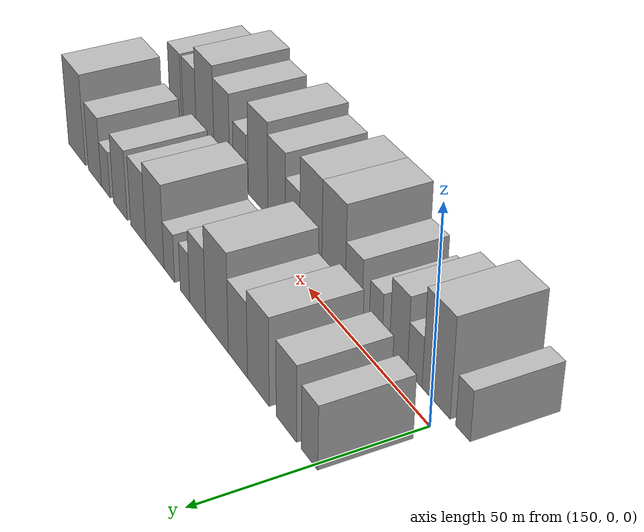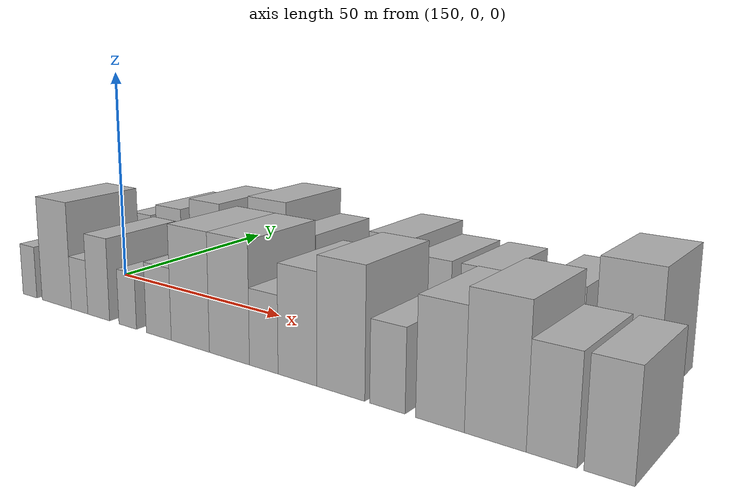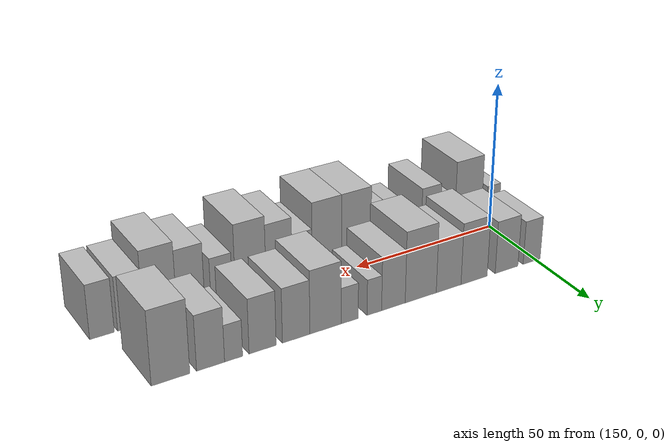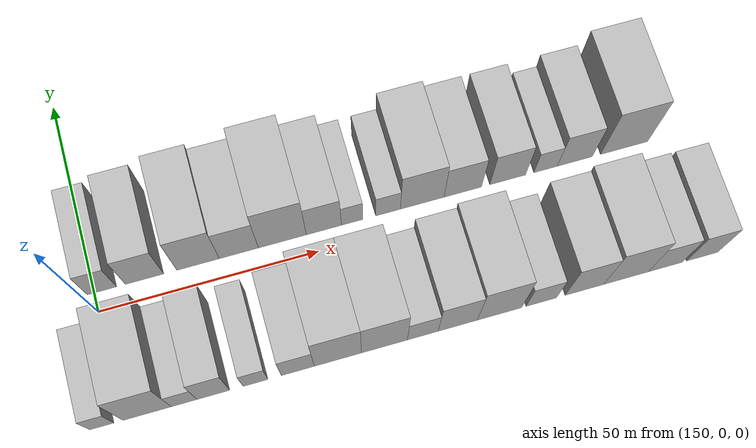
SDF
<sdf version="1.6">
 <world name="default">
  <model name="building_14">
   <static>1</static>
   <pose>151.7256 14.5000 0 0.000000 0.000000 1.570796</pose>
   <link name="link">
    <pose>0 0 7.50 0 0 0</pose>
    <collision name="collision"><geometry><box><size>20.0000 6.5979 15.0000</size></box></geometry></collision>
    <visual name="visual">
     <cast_shadows>0</cast_shadows>
     <geometry><box><size>20.0000 6.5979 15.0000</size></box></geometry>
     <material>
      <script>
       <uri>model://HANNAS_wall/materials/scripts</uri>
       <uri>model://HANNAS_wall/materials/textures</uri>
       <name>vrc/HANNAS_wall</name>
      </script>
     </material>
    </visual>
   </link>
  </model>
  <model name="building_15">
   <static>1</static>
   <pose>161.3414 14.5000 0 0.000000 0.000000 1.570796</pose>
   <link name="link">
    <pose>0 0 9.00 0 0 0</pose>
    <collision name="collision"><geometry><box><size>20.0000 8.6339 18.0000</size></box></geometry></collision>
    <visual name="visual">
     <cast_shadows>0</cast_shadows>
     <geometry><box><size>20.0000 8.6339 18.0000</size></box></geometry>
     <material>
      <script>
       <uri>model://HANNAS_wall/materials/scripts</uri>
       <uri>model://HANNAS_wall/materials/textures</uri>
       <name>vrc/HANNAS_wall</name>
      </script>
     </material>
    </visual>
   </link>
  </model>
  <model name="building_16">
   <static>1</static>
   <pose>173.5010 14.5000 0 0.000000 0.000000 1.570796</pose>
   <link name="link">
    <pose>0 0 10.50 0 0 0</pose>
    <collision name="collision"><geometry><box><size>20.0000 9.6852 21.0000</size></box></geometry></collision>
    <visual name="visual">
     <cast_shadows>0</cast_shadows>
     <geometry><box><size>20.0000 9.6852 21.0000</size></box></geometry>
     <material>
      <script>
       <uri>model://HANNAS_wall/materials/scripts</uri>
       <uri>model://HANNAS_wall/materials/textures</uri>
       <name>vrc/HANNAS_wall</name>
      </script>
     </material>
    </visual>
   </link>
  </model>
  <model name="building_17">
   <static>1</static>
   <pose>182.8265 14.5000 0 0.000000 0.000000 1.570796</pose>
   <link name="link">
    <pose>0 0 9.00 0 0 0</pose>
    <collision name="collision"><geometry><box><size>20.0000 8.9659 18.0000</size></box></geometry></collision>
    <visual name="visual">
     <cast_shadows>0</cast_shadows>
     <geometry><box><size>20.0000 8.9659 18.0000</size></box></geometry>
     <material>
      <script>
       <uri>model://HANNAS_wall/materials/scripts</uri>
       <uri>model://HANNAS_wall/materials/textures</uri>
       <name>vrc/HANNAS_wall</name>
      </script>
     </material>
    </visual>
   </link>
  </model>
  <model name="building_18">
   <static>1</static>
   <pose>192.8159 14.5000 0 0.000000 0.000000 1.570796</pose>
   <link name="link">
    <pose>0 0 12.00 0 0 0</pose>
    <collision name="collision"><geometry><box><size>20.0000 11.0129 24.0000</size></box></geometry></collision>
    <visual name="visual">
     <cast_shadows>0</cast_shadows>
     <geometry><box><size>20.0000 11.0129 24.0000</size></box></geometry>
     <material>
      <script>
       <uri>model://HANNAS_wall/materials/scripts</uri>
       <uri>model://HANNAS_wall/materials/textures</uri>
       <name>vrc/HANNAS_wall</name>
      </script>
     </material>
    </visual>
   </link>
  </model>
  <model name="building_19">
   <static>1</static>
   <pose>202.4088 14.5000 0 0.000000 0.000000 1.570796</pose>
   <link name="link">
    <pose>0 0 9.00 0 0 0</pose>
    <collision name="collision"><geometry><box><size>20.0000 8.1729 18.0000</size></box></geometry></collision>
    <visual name="visual">
     <cast_shadows>0</cast_shadows>
     <geometry><box><size>20.0000 8.1729 18.0000</size></box></geometry>
     <material>
      <script>
       <uri>model://HANNAS_wall/materials/scripts</uri>
       <uri>model://HANNAS_wall/materials/textures</uri>
       <name>vrc/HANNAS_wall</name>
      </script>
     </material>
    </visual>
   </link>
  </model>
  <model name="building_20">
   <static>1</static>
   <pose>208.9782 14.5000 0 0.000000 0.000000 1.570796</pose>
   <link name="link">
    <pose>0 0 6.00 0 0 0</pose>
    <collision name="collision"><geometry><box><size>20.0000 4.9659 12.0000</size></box></geometry></collision>
    <visual name="visual">
     <cast_shadows>0</cast_shadows>
     <geometry><box><size>20.0000 4.9659 12.0000</size></box></geometry>
     <material>
      <script>
       <uri>model://HANNAS_wall/materials/scripts</uri>
       <uri>model://HANNAS_wall/materials/textures</uri>
       <name>vrc/HANNAS_wall</name>
      </script>
     </material>
    </visual>
   </link>
  </model>
  <model name="building_21">
   <static>1</static>
   <pose>217.3360 14.5000 0 0.000000 0.000000 1.570796</pose>
   <link name="link">
    <pose>0 0 6.00 0 0 0</pose>
    <collision name="collision"><geometry><box><size>20.0000 5.7497 12.0000</size></box></geometry></collision>
    <visual name="visual">
     <cast_shadows>0</cast_shadows>
     <geometry><box><size>20.0000 5.7497 12.0000</size></box></geometry>
     <material>
      <script>
       <uri>model://HANNAS_wall/materials/scripts</uri>
       <uri>model://HANNAS_wall/materials/textures</uri>
       <name>vrc/HANNAS_wall</name>
      </script>
     </material>
    </visual>
   </link>
  </model>
  <model name="building_22">
   <static>1</static>
   <pose>225.3404 14.5000 0 0.000000 0.000000 1.570796</pose>
   <link name="link">
    <pose>0 0 10.50 0 0 0</pose>
    <collision name="collision"><geometry><box><size>20.0000 10.2591 21.0000</size></box></geometry></collision>
    <visual name="visual">
     <cast_shadows>0</cast_shadows>
     <geometry><box><size>20.0000 10.2591 21.0000</size></box></geometry>
     <material>
      <script>
       <uri>model://HANNAS_wall/materials/scripts</uri>
       <uri>model://HANNAS_wall/materials/textures</uri>
       <name>vrc/HANNAS_wall</name>
      </script>
     </material>
    </visual>
   </link>
  </model>
  <model name="building_23">
   <static>1</static>
   <pose>234.8918 14.5000 0 0.000000 0.000000 1.570796</pose>
   <link name="link">
    <pose>0 0 9.00 0 0 0</pose>
    <collision name="collision"><geometry><box><size>20.0000 8.8437 18.0000</size></box></geometry></collision>
    <visual name="visual">
     <cast_shadows>0</cast_shadows>
     <geometry><box><size>20.0000 8.8437 18.0000</size></box></geometry>
     <material>
      <script>
       <uri>model://HANNAS_wall/materials/scripts</uri>
       <uri>model://HANNAS_wall/materials/textures</uri>
       <name>vrc/HANNAS_wall</name>
      </script>
     </material>
    </visual>
   </link>
  </model>
  <model name="building_24">
   <static>1</static>
   <pose>245.5570 14.5000 0 0.000000 0.000000 1.570796</pose>
   <link name="link">
    <pose>0 0 9.00 0 0 0</pose>
    <collision name="collision"><geometry><box><size>20.0000 8.4868 18.0000</size></box></geometry></collision>
    <visual name="visual">
     <cast_shadows>0</cast_shadows>
     <geometry><box><size>20.0000 8.4868 18.0000</size></box></geometry>
     <material>
      <script>
       <uri>model://HANNAS_wall/materials/scripts</uri>
       <uri>model://HANNAS_wall/materials/textures</uri>
       <name>vrc/HANNAS_wall</name>
      </script>
     </material>
    </visual>
   </link>
  </model>
  <model name="building_25">
   <static>1</static>
   <pose>254.5691 14.5000 0 0.000000 0.000000 1.570796</pose>
   <link name="link">
    <pose>0 0 6.00 0 0 0</pose>
    <collision name="collision"><geometry><box><size>20.0000 5.5375 12.0000</size></box></geometry></collision>
    <visual name="visual">
     <cast_shadows>0</cast_shadows>
     <geometry><box><size>20.0000 5.5375 12.0000</size></box></geometry>
     <material>
      <script>
       <uri>model://HANNAS_wall/materials/scripts</uri>
       <uri>model://HANNAS_wall/materials/textures</uri>
       <name>vrc/HANNAS_wall</name>
      </script>
     </material>
    </visual>
   </link>
  </model>
  <model name="building_26">
   <static>1</static>
   <pose>261.5695 14.5000 0 0.000000 0.000000 1.570796</pose>
   <link name="link">
    <pose>0 0 9.00 0 0 0</pose>
    <collision name="collision"><geometry><box><size>20.0000 8.4633 18.0000</size></box></geometry></collision>
    <visual name="visual">
     <cast_shadows>0</cast_shadows>
     <geometry><box><size>20.0000 8.4633 18.0000</size></box></geometry>
     <material>
      <script>
       <uri>model://HANNAS_wall/materials/scripts</uri>
       <uri>model://HANNAS_wall/materials/textures</uri>
       <name>vrc/HANNAS_wall</name>
      </script>
     </material>
    </visual>
   </link>
  </model>
  <model name="building_27">
   <static>1</static>
   <pose>273.4827 14.5000 0 0.000000 0.000000 1.570796</pose>
   <link name="link">
    <pose>0 0 12.00 0 0 0</pose>
    <collision name="collision"><geometry><box><size>20.0000 11.3630 24.0000</size></box></geometry></collision>
    <visual name="visual">
     <cast_shadows>0</cast_shadows>
     <geometry><box><size>20.0000 11.3630 24.0000</size></box></geometry>
     <material>
      <script>
       <uri>model://HANNAS_wall/materials/scripts</uri>
       <uri>model://HANNAS_wall/materials/textures</uri>
       <name>vrc/HANNAS_wall</name>
      </script>
     </material>
    </visual>
   </link>
  </model>
  <model name="building_42">
   <static>1</static>
   <pose>145.4929 -14.5000 0 0.000000 0.000000 1.570796</pose>
   <link name="link">
    <pose>0 0 6.00 0 0 0</pose>
    <collision name="collision"><geometry><box><size>20.0000 5.2199 12.0000</size></box></geometry></collision>
    <visual name="visual">
     <cast_shadows>0</cast_shadows>
     <geometry><box><size>20.0000 5.2199 12.0000</size></box></geometry>
     <material>
      <script>
       <uri>model://HANNAS_wall/materials/scripts</uri>
       <uri>model://HANNAS_wall/materials/textures</uri>
       <name>vrc/HANNAS_wall</name>
      </script>
     </material>
    </visual>
   </link>
  </model>
  <model name="building_43">
   <static>1</static>
   <pose>155.3726 -14.5000 0 0.000000 0.000000 1.570796</pose>
   <link name="link">
    <pose>0 0 12.00 0 0 0</pose>
    <collision name="collision"><geometry><box><size>20.0000 10.5393 24.0000</size></box></geometry></collision>
    <visual name="visual">
     <cast_shadows>0</cast_shadows>
     <geometry><box><size>20.0000 10.5393 24.0000</size></box></geometry>
     <material>
      <script>
       <uri>model://HANNAS_wall/materials/scripts</uri>
       <uri>model://HANNAS_wall/materials/textures</uri>
       <name>vrc/HANNAS_wall</name>
      </script>
     </material>
    </visual>
   </link>
  </model>
  <model name="building_44">
   <static>1</static>
   <pose>163.4774 -14.5000 0 0.000000 0.000000 1.570796</pose>
   <link name="link">
    <pose>0 0 6.00 0 0 0</pose>
    <collision name="collision"><geometry><box><size>20.0000 5.6702 12.0000</size></box></geometry></collision>
    <visual name="visual">
     <cast_shadows>0</cast_shadows>
     <geometry><box><size>20.0000 5.6702 12.0000</size></box></geometry>
     <material>
      <script>
       <uri>model://HANNAS_wall/materials/scripts</uri>
       <uri>model://HANNAS_wall/materials/textures</uri>
       <name>vrc/HANNAS_wall</name>
      </script>
     </material>
    </visual>
   </link>
  </model>
  <model name="building_45">
   <static>1</static>
   <pose>169.9142 -14.5000 0 0.000000 0.000000 1.570796</pose>
   <link name="link">
    <pose>0 0 9.00 0 0 0</pose>
    <collision name="collision"><geometry><box><size>20.0000 7.2034 18.0000</size></box></geometry></collision>
    <visual name="visual">
     <cast_shadows>0</cast_shadows>
     <geometry><box><size>20.0000 7.2034 18.0000</size></box></geometry>
     <material>
      <script>
       <uri>model://HANNAS_wall/materials/scripts</uri>
       <uri>model://HANNAS_wall/materials/textures</uri>
       <name>vrc/HANNAS_wall</name>
      </script>
     </material>
    </visual>
   </link>
  </model>
  <model name="building_46">
   <static>1</static>
   <pose>179.2602 -14.5000 0 0.000000 0.000000 1.570796</pose>
   <link name="link">
    <pose>0 0 6.00 0 0 0</pose>
    <collision name="collision"><geometry><box><size>20.0000 5.4887 12.0000</size></box></geometry></collision>
    <visual name="visual">
     <cast_shadows>0</cast_shadows>
     <geometry><box><size>20.0000 5.4887 12.0000</size></box></geometry>
     <material>
      <script>
       <uri>model://HANNAS_wall/materials/scripts</uri>
       <uri>model://HANNAS_wall/materials/textures</uri>
       <name>vrc/HANNAS_wall</name>
      </script>
     </material>
    </visual>
   </link>
  </model>
  <model name="building_47">
   <static>1</static>
   <pose>188.6819 -14.5000 0 0.000000 0.000000 1.570796</pose>
   <link name="link">
    <pose>0 0 7.50 0 0 0</pose>
    <collision name="collision"><geometry><box><size>20.0000 7.3547 15.0000</size></box></geometry></collision>
    <visual name="visual">
     <cast_shadows>0</cast_shadows>
     <geometry><box><size>20.0000 7.3547 15.0000</size></box></geometry>
     <material>
      <script>
       <uri>model://HANNAS_wall/materials/scripts</uri>
       <uri>model://HANNAS_wall/materials/textures</uri>
       <name>vrc/HANNAS_wall</name>
      </script>
     </material>
    </visual>
   </link>
  </model>
  <model name="building_48">
   <static>1</static>
   <pose>197.6561 -14.5000 0 0.000000 0.000000 1.570796</pose>
   <link name="link">
    <pose>0 0 12.00 0 0 0</pose>
    <collision name="collision"><geometry><box><size>20.0000 10.5936 24.0000</size></box></geometry></collision>
    <visual name="visual">
     <cast_shadows>0</cast_shadows>
     <geometry><box><size>20.0000 10.5936 24.0000</size></box></geometry>
     <material>
      <script>
       <uri>model://HANNAS_wall/materials/scripts</uri>
       <uri>model://HANNAS_wall/materials/textures</uri>
       <name>vrc/HANNAS_wall</name>
      </script>
     </material>
    </visual>
   </link>
  </model>
  <model name="building_49">
   <static>1</static>
   <pose>208.1344 -14.5000 0 0.000000 0.000000 1.570796</pose>
   <link name="link">
    <pose>0 0 12.00 0 0 0</pose>
    <collision name="collision"><geometry><box><size>20.0000 10.3630 24.0000</size></box></geometry></collision>
    <visual name="visual">
     <cast_shadows>0</cast_shadows>
     <geometry><box><size>20.0000 10.3630 24.0000</size></box></geometry>
     <material>
      <script>
       <uri>model://HANNAS_wall/materials/scripts</uri>
       <uri>model://HANNAS_wall/materials/textures</uri>
       <name>vrc/HANNAS_wall</name>
      </script>
     </material>
    </visual>
   </link>
  </model>
  <model name="building_50">
   <static>1</static>
   <pose>216.7969 -14.5000 0 0.000000 0.000000 1.570796</pose>
   <link name="link">
    <pose>0 0 7.50 0 0 0</pose>
    <collision name="collision"><geometry><box><size>20.0000 6.9619 15.0000</size></box></geometry></collision>
    <visual name="visual">
     <cast_shadows>0</cast_shadows>
     <geometry><box><size>20.0000 6.9619 15.0000</size></box></geometry>
     <material>
      <script>
       <uri>model://HANNAS_wall/materials/scripts</uri>
       <uri>model://HANNAS_wall/materials/textures</uri>
       <name>vrc/HANNAS_wall</name>
      </script>
     </material>
    </visual>
   </link>
  </model>
  <model name="building_51">
   <static>1</static>
   <pose>224.7516 -14.5000 0 0.000000 0.000000 1.570796</pose>
   <link name="link">
    <pose>0 0 10.50 0 0 0</pose>
    <collision name="collision"><geometry><box><size>20.0000 8.9475 21.0000</size></box></geometry></collision>
    <visual name="visual">
     <cast_shadows>0</cast_shadows>
     <geometry><box><size>20.0000 8.9475 21.0000</size></box></geometry>
     <material>
      <script>
       <uri>model://HANNAS_wall/materials/scripts</uri>
       <uri>model://HANNAS_wall/materials/textures</uri>
       <name>vrc/HANNAS_wall</name>
      </script>
     </material>
    </visual>
   </link>
  </model>
  <model name="building_52">
   <static>1</static>
   <pose>234.3467 -14.5000 0 0.000000 0.000000 1.570796</pose>
   <link name="link">
    <pose>0 0 12.00 0 0 0</pose>
    <collision name="collision"><geometry><box><size>20.0000 10.2428 24.0000</size></box></geometry></collision>
    <visual name="visual">
     <cast_shadows>0</cast_shadows>
     <geometry><box><size>20.0000 10.2428 24.0000</size></box></geometry>
     <material>
      <script>
       <uri>model://HANNAS_wall/materials/scripts</uri>
       <uri>model://HANNAS_wall/materials/textures</uri>
       <name>vrc/HANNAS_wall</name>
      </script>
     </material>
    </visual>
   </link>
  </model>
  <model name="building_53">
   <static>1</static>
   <pose>243.9899 -14.5000 0 0.000000 0.000000 1.570796</pose>
   <link name="link">
    <pose>0 0 7.50 0 0 0</pose>
    <collision name="collision"><geometry><box><size>20.0000 7.0435 15.0000</size></box></geometry></collision>
    <visual name="visual">
     <cast_shadows>0</cast_shadows>
     <geometry><box><size>20.0000 7.0435 15.0000</size></box></geometry>
     <material>
      <script>
       <uri>model://HANNAS_wall/materials/scripts</uri>
       <uri>model://HANNAS_wall/materials/textures</uri>
       <name>vrc/HANNAS_wall</name>
      </script>
     </material>
    </visual>
   </link>
  </model>
  <model name="building_54">
   <static>1</static>
   <pose>253.9888 -14.5000 0 0.000000 0.000000 1.570796</pose>
   <link name="link">
    <pose>0 0 10.50 0 0 0</pose>
    <collision name="collision"><geometry><box><size>20.0000 8.9544 21.0000</size></box></geometry></collision>
    <visual name="visual">
     <cast_shadows>0</cast_shadows>
     <geometry><box><size>20.0000 8.9544 21.0000</size></box></geometry>
     <material>
      <script>
       <uri>model://HANNAS_wall/materials/scripts</uri>
       <uri>model://HANNAS_wall/materials/textures</uri>
       <name>vrc/HANNAS_wall</name>
      </script>
     </material>
    </visual>
   </link>
  </model>
  <model name="building_55">
   <static>1</static>
   <pose>263.7018 -14.5000 0 0.000000 0.000000 1.570796</pose>
   <link name="link">
    <pose>0 0 12.00 0 0 0</pose>
    <collision name="collision"><geometry><box><size>20.0000 10.4715 24.0000</size></box></geometry></collision>
    <visual name="visual">
     <cast_shadows>0</cast_shadows>
     <geometry><box><size>20.0000 10.4715 24.0000</size></box></geometry>
     <material>
      <script>
       <uri>model://HANNAS_wall/materials/scripts</uri>
       <uri>model://HANNAS_wall/materials/textures</uri>
       <name>vrc/HANNAS_wall</name>
      </script>
     </material>
    </visual>
   </link>
  </model>
  <model name="building_56">
   <static>1</static>
   <pose>272.9209 -14.5000 0 0.000000 0.000000 1.570796</pose>
   <link name="link">
    <pose>0 0 9.00 0 0 0</pose>
    <collision name="collision"><geometry><box><size>20.0000 7.9667 18.0000</size></box></geometry></collision>
    <visual name="visual">
     <cast_shadows>0</cast_shadows>
     <geometry><box><size>20.0000 7.9667 18.0000</size></box></geometry>
     <material>
      <script>
       <uri>model://HANNAS_wall/materials/scripts</uri>
       <uri>model://HANNAS_wall/materials/textures</uri>
       <name>vrc/HANNAS_wall</name>
      </script>
     </material>
    </visual>
   </link>
  </model>
  <model name="building_57">
   <static>1</static>
   <pose>281.6177 -14.5000 0 0.000000 0.000000 1.570796</pose>
   <link name="link">
    <pose>0 0 9.00 0 0 0</pose>
    <collision name="collision"><geometry><box><size>20.0000 7.4269 18.0000</size></box></geometry></collision>
    <visual name="visual">
     <cast_shadows>0</cast_shadows>
     <geometry><box><size>20.0000 7.4269 18.0000</size></box></geometry>
     <material>
      <script>
       <uri>model://HANNAS_wall/materials/scripts</uri>
       <uri>model://HANNAS_wall/materials/textures</uri>
       <name>vrc/HANNAS_wall</name>
      </script>
     </material>
    </visual>
   </link>
  </model>
 </world>
</sdf>
